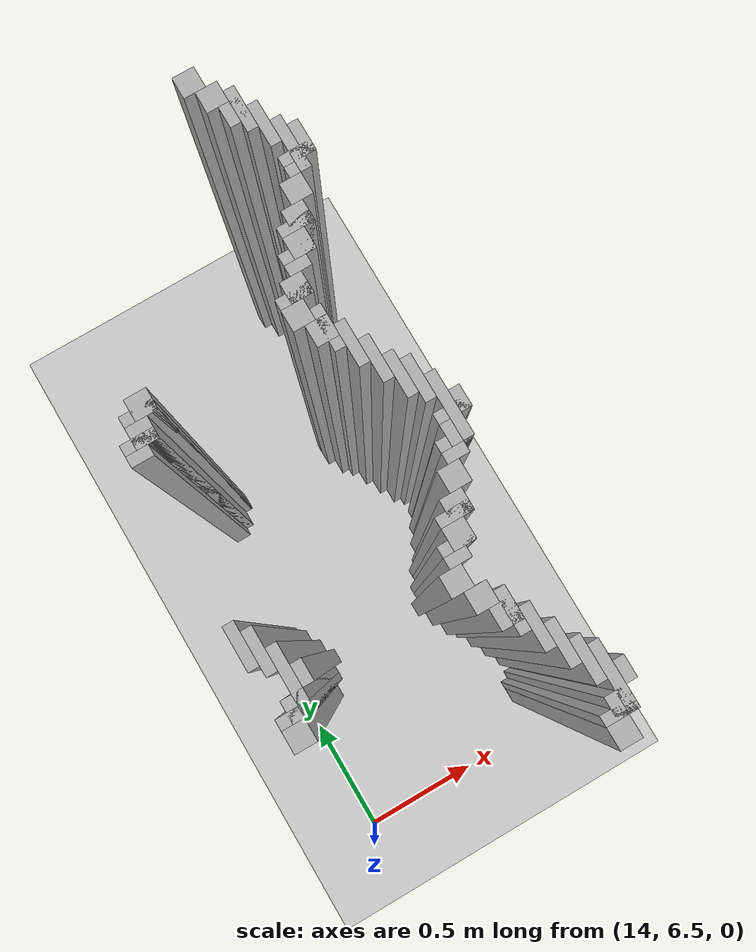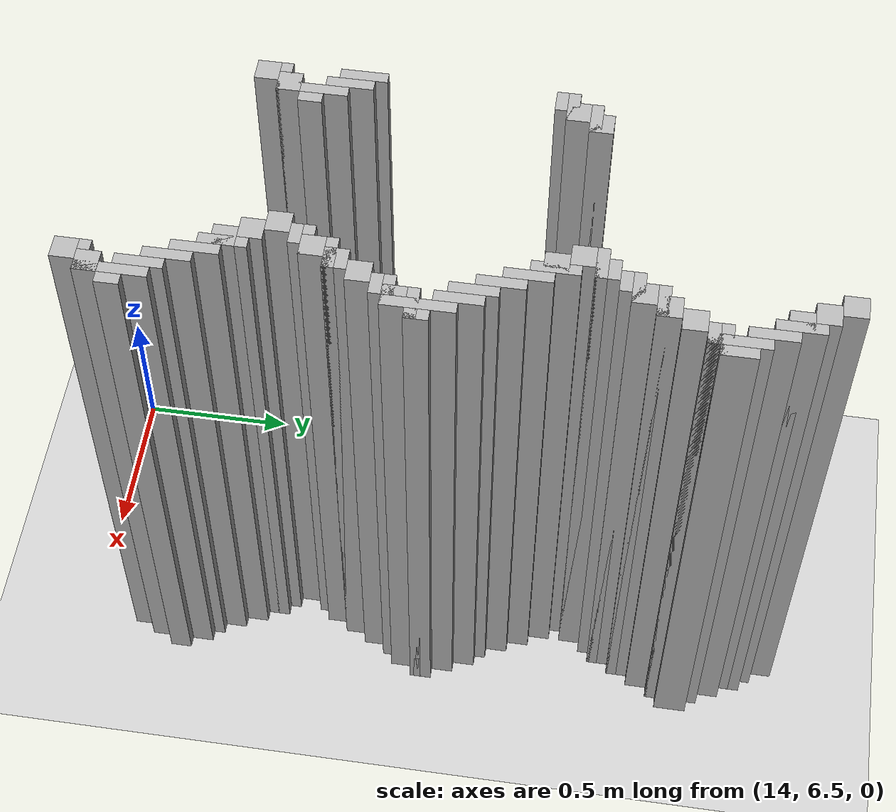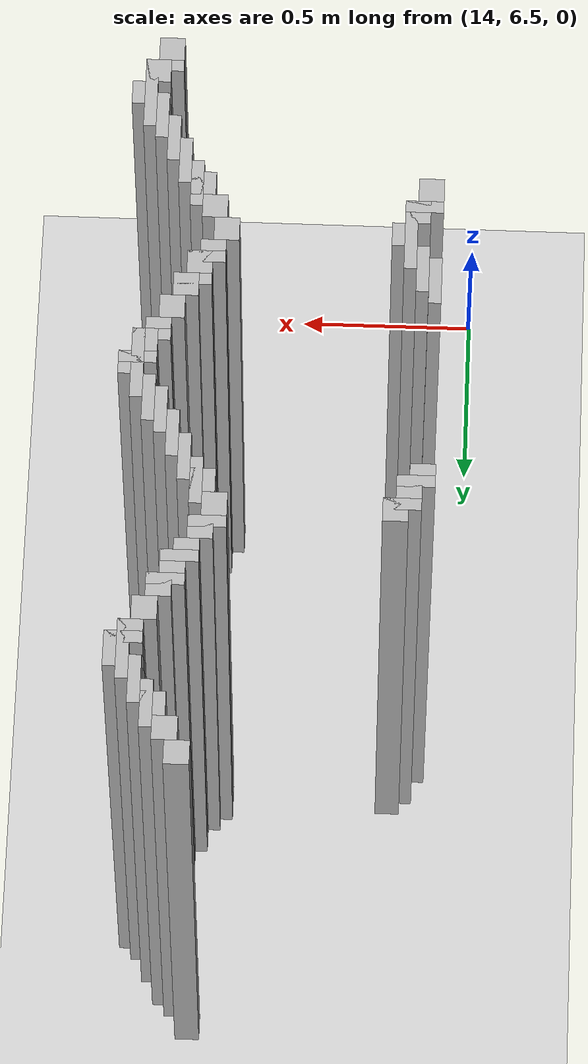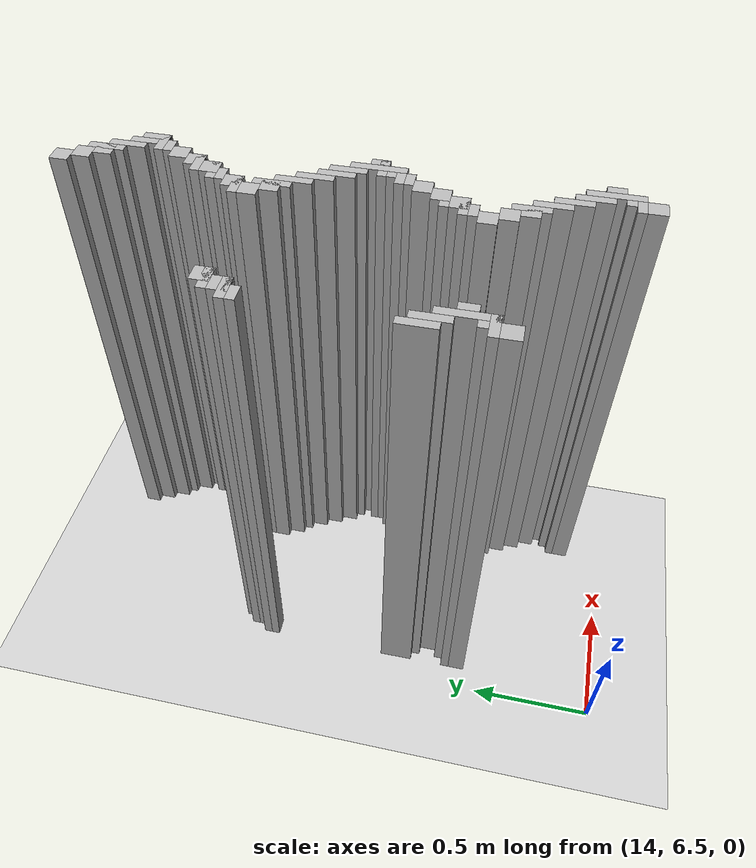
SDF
<sdf version="1.6">
 <world name="slam_world">
  <model name="ground_plane">
   <static>true</static>
   <link name="link">
    <collision name="collision">
     <geometry><plane><normal>0 0 1</normal><size>100 100</size></plane></geometry>
    </collision>
    <visual name="visual">
     <geometry><plane><normal>0 0 1</normal><size>100 100</size></plane></geometry>
     <material>
      <ambient>0.8 0.8 0.8 1</ambient>
      <diffuse>0.8 0.8 0.8 1</diffuse>
      <specular>0.8 0.8 0.8 1</specular>
     </material>
    </visual>
   </link>
  </model>
  <model name="wall_2879">
   <static>true</static>
   <pose>14.756380510440835 8.805104408352667 1.0 0 0 0</pose>
   <link name="link">
    <collision name="collision">
     <geometry><box><size>0.06960556844547564 0.06960556844547564 2.0</size></box></geometry>
    </collision>
    <visual name="visual">
     <geometry><box><size>0.06960556844547564 0.06960556844547564 2.0</size></box></geometry>
     <material><ambient>0.5 0.5 0.5 1</ambient><diffuse>0.7 0.7 0.7 1</diffuse></material>
    </visual>
   </link>
  </model>
  <model name="wall_2892">
   <static>true</static>
   <pose>14.791183294663572 8.735498839907192 1.0 0 0 0</pose>
   <link name="link">
    <collision name="collision">
     <geometry><box><size>0.06960556844547564 0.06960556844547564 2.0</size></box></geometry>
    </collision>
    <visual name="visual">
     <geometry><box><size>0.06960556844547564 0.06960556844547564 2.0</size></box></geometry>
     <material><ambient>0.5 0.5 0.5 1</ambient><diffuse>0.7 0.7 0.7 1</diffuse></material>
    </visual>
   </link>
  </model>
  <model name="wall_2905">
   <static>true</static>
   <pose>14.84338747099768 8.665893271461716 1.0 0 0 0</pose>
   <link name="link">
    <collision name="collision">
     <geometry><box><size>0.03480278422273782 0.13921113689095127 2.0</size></box></geometry>
    </collision>
    <visual name="visual">
     <geometry><box><size>0.03480278422273782 0.13921113689095127 2.0</size></box></geometry>
     <material><ambient>0.5 0.5 0.5 1</ambient><diffuse>0.7 0.7 0.7 1</diffuse></material>
    </visual>
   </link>
  </model>
  <model name="wall_2914">
   <static>true</static>
   <pose>14.825986078886311 8.665893271461716 1.0 0 0 0</pose>
   <link name="link">
    <collision name="collision">
     <geometry><box><size>0.06960556844547564 0.06960556844547564 2.0</size></box></geometry>
    </collision>
    <visual name="visual">
     <geometry><box><size>0.06960556844547564 0.06960556844547564 2.0</size></box></geometry>
     <material><ambient>0.5 0.5 0.5 1</ambient><diffuse>0.7 0.7 0.7 1</diffuse></material>
    </visual>
   </link>
  </model>
  <model name="wall_2927">
   <static>true</static>
   <pose>14.878190255220417 8.596287703016241 1.0 0 0 0</pose>
   <link name="link">
    <collision name="collision">
     <geometry><box><size>0.03480278422273782 0.13921113689095127 2.0</size></box></geometry>
    </collision>
    <visual name="visual">
     <geometry><box><size>0.03480278422273782 0.13921113689095127 2.0</size></box></geometry>
     <material><ambient>0.5 0.5 0.5 1</ambient><diffuse>0.7 0.7 0.7 1</diffuse></material>
    </visual>
   </link>
  </model>
  <model name="wall_2946">
   <static>true</static>
   <pose>14.912993039443155 8.509280742459396 1.0 0 0 0</pose>
   <link name="link">
    <collision name="collision">
     <geometry><box><size>0.03480278422273782 0.17401392111368907 2.0</size></box></geometry>
    </collision>
    <visual name="visual">
     <geometry><box><size>0.03480278422273782 0.17401392111368907 2.0</size></box></geometry>
     <material><ambient>0.5 0.5 0.5 1</ambient><diffuse>0.7 0.7 0.7 1</diffuse></material>
    </visual>
   </link>
  </model>
  <model name="wall_2959">
   <static>true</static>
   <pose>14.947795823665892 8.509280742459396 1.0 0 0 0</pose>
   <link name="link">
    <collision name="collision">
     <geometry><box><size>0.03480278422273782 0.10440835266821345 2.0</size></box></geometry>
    </collision>
    <visual name="visual">
     <geometry><box><size>0.03480278422273782 0.10440835266821345 2.0</size></box></geometry>
     <material><ambient>0.5 0.5 0.5 1</ambient><diffuse>0.7 0.7 0.7 1</diffuse></material>
    </visual>
   </link>
  </model>
  <model name="wall_2985">
   <static>true</static>
   <pose>14.912993039443155 8.474477958236658 1.0 0 0 0</pose>
   <link name="link">
    <collision name="collision">
     <geometry><box><size>0.10440835266821345 0.03480278422273782 2.0</size></box></geometry>
    </collision>
    <visual name="visual">
     <geometry><box><size>0.10440835266821345 0.03480278422273782 2.0</size></box></geometry>
     <material><ambient>0.5 0.5 0.5 1</ambient><diffuse>0.7 0.7 0.7 1</diffuse></material>
    </visual>
   </link>
  </model>
  <model name="wall_3000">
   <static>true</static>
   <pose>14.895591647331786 8.43967517401392 1.0 0 0 0</pose>
   <link name="link">
    <collision name="collision">
     <geometry><box><size>0.06960556844547564 0.03480278422273782 2.0</size></box></geometry>
    </collision>
    <visual name="visual">
     <geometry><box><size>0.06960556844547564 0.03480278422273782 2.0</size></box></geometry>
     <material><ambient>0.5 0.5 0.5 1</ambient><diffuse>0.7 0.7 0.7 1</diffuse></material>
    </visual>
   </link>
  </model>
  <model name="wall_3015">
   <static>true</static>
   <pose>14.860788863109049 8.387470997679815 1.0 0 0 0</pose>
   <link name="link">
    <collision name="collision">
     <geometry><box><size>0.06960556844547564 0.06960556844547564 2.0</size></box></geometry>
    </collision>
    <visual name="visual">
     <geometry><box><size>0.06960556844547564 0.06960556844547564 2.0</size></box></geometry>
     <material><ambient>0.5 0.5 0.5 1</ambient><diffuse>0.7 0.7 0.7 1</diffuse></material>
    </visual>
   </link>
  </model>
  <model name="wall_3030">
   <static>true</static>
   <pose>14.825986078886311 8.317865429234338 1.0 0 0 0</pose>
   <link name="link">
    <collision name="collision">
     <geometry><box><size>0.06960556844547564 0.06960556844547564 2.0</size></box></geometry>
    </collision>
    <visual name="visual">
     <geometry><box><size>0.06960556844547564 0.06960556844547564 2.0</size></box></geometry>
     <material><ambient>0.5 0.5 0.5 1</ambient><diffuse>0.7 0.7 0.7 1</diffuse></material>
    </visual>
   </link>
  </model>
  <model name="wall_3045">
   <static>true</static>
   <pose>14.80858468677494 8.30046403712297 1.0 0 0 0</pose>
   <link name="link">
    <collision name="collision">
     <geometry><box><size>0.10440835266821345 0.03480278422273782 2.0</size></box></geometry>
    </collision>
    <visual name="visual">
     <geometry><box><size>0.10440835266821345 0.03480278422273782 2.0</size></box></geometry>
     <material><ambient>0.5 0.5 0.5 1</ambient><diffuse>0.7 0.7 0.7 1</diffuse></material>
    </visual>
   </link>
  </model>
  <model name="wall_3055">
   <static>true</static>
   <pose>14.791183294663572 8.248259860788863 1.0 0 0 0</pose>
   <link name="link">
    <collision name="collision">
     <geometry><box><size>0.06960556844547564 0.06960556844547564 2.0</size></box></geometry>
    </collision>
    <visual name="visual">
     <geometry><box><size>0.06960556844547564 0.06960556844547564 2.0</size></box></geometry>
     <material><ambient>0.5 0.5 0.5 1</ambient><diffuse>0.7 0.7 0.7 1</diffuse></material>
    </visual>
   </link>
  </model>
  <model name="wall_3070">
   <static>true</static>
   <pose>14.773781902552203 8.230858468677495 1.0 0 0 0</pose>
   <link name="link">
    <collision name="collision">
     <geometry><box><size>0.10440835266821345 0.03480278422273782 2.0</size></box></geometry>
    </collision>
    <visual name="visual">
     <geometry><box><size>0.10440835266821345 0.03480278422273782 2.0</size></box></geometry>
     <material><ambient>0.5 0.5 0.5 1</ambient><diffuse>0.7 0.7 0.7 1</diffuse></material>
    </visual>
   </link>
  </model>
  <model name="wall_3079">
   <static>true</static>
   <pose>14.756380510440835 8.196055684454755 1.0 0 0 0</pose>
   <link name="link">
    <collision name="collision">
     <geometry><box><size>0.06960556844547564 0.03480278422273782 2.0</size></box></geometry>
    </collision>
    <visual name="visual">
     <geometry><box><size>0.06960556844547564 0.03480278422273782 2.0</size></box></geometry>
     <material><ambient>0.5 0.5 0.5 1</ambient><diffuse>0.7 0.7 0.7 1</diffuse></material>
    </visual>
   </link>
  </model>
  <model name="wall_3094">
   <static>true</static>
   <pose>14.721577726218097 8.14385150812065 1.0 0 0 0</pose>
   <link name="link">
    <collision name="collision">
     <geometry><box><size>0.06960556844547564 0.06960556844547564 2.0</size></box></geometry>
    </collision>
    <visual name="visual">
     <geometry><box><size>0.06960556844547564 0.06960556844547564 2.0</size></box></geometry>
     <material><ambient>0.5 0.5 0.5 1</ambient><diffuse>0.7 0.7 0.7 1</diffuse></material>
    </visual>
   </link>
  </model>
  <model name="wall_3108">
   <static>true</static>
   <pose>14.704176334106728 8.12645011600928 1.0 0 0 0</pose>
   <link name="link">
    <collision name="collision">
     <geometry><box><size>0.10440835266821345 0.03480278422273782 2.0</size></box></geometry>
    </collision>
    <visual name="visual">
     <geometry><box><size>0.10440835266821345 0.03480278422273782 2.0</size></box></geometry>
     <material><ambient>0.5 0.5 0.5 1</ambient><diffuse>0.7 0.7 0.7 1</diffuse></material>
    </visual>
   </link>
  </model>
  <model name="wall_3119">
   <static>true</static>
   <pose>14.199535962877029 8.074245939675174 1.0 0 0 0</pose>
   <link name="link">
    <collision name="collision">
     <geometry><box><size>0.06960556844547564 0.06960556844547564 2.0</size></box></geometry>
    </collision>
    <visual name="visual">
     <geometry><box><size>0.06960556844547564 0.06960556844547564 2.0</size></box></geometry>
     <material><ambient>0.5 0.5 0.5 1</ambient><diffuse>0.7 0.7 0.7 1</diffuse></material>
    </visual>
   </link>
  </model>
  <model name="wall_3120">
   <static>true</static>
   <pose>14.68677494199536 8.074245939675174 1.0 0 0 0</pose>
   <link name="link">
    <collision name="collision">
     <geometry><box><size>0.06960556844547564 0.06960556844547564 2.0</size></box></geometry>
    </collision>
    <visual name="visual">
     <geometry><box><size>0.06960556844547564 0.06960556844547564 2.0</size></box></geometry>
     <material><ambient>0.5 0.5 0.5 1</ambient><diffuse>0.7 0.7 0.7 1</diffuse></material>
    </visual>
   </link>
  </model>
  <model name="wall_3133">
   <static>true</static>
   <pose>14.18213457076566 8.056844547563804 1.0 0 0 0</pose>
   <link name="link">
    <collision name="collision">
     <geometry><box><size>0.10440835266821345 0.03480278422273782 2.0</size></box></geometry>
    </collision>
    <visual name="visual">
     <geometry><box><size>0.10440835266821345 0.03480278422273782 2.0</size></box></geometry>
     <material><ambient>0.5 0.5 0.5 1</ambient><diffuse>0.7 0.7 0.7 1</diffuse></material>
    </visual>
   </link>
  </model>
  <model name="wall_3134">
   <static>true</static>
   <pose>14.738979118329466 8.004640371229698 1.0 0 0 0</pose>
   <link name="link">
    <collision name="collision">
     <geometry><box><size>0.03480278422273782 0.13921113689095127 2.0</size></box></geometry>
    </collision>
    <visual name="visual">
     <geometry><box><size>0.03480278422273782 0.13921113689095127 2.0</size></box></geometry>
     <material><ambient>0.5 0.5 0.5 1</ambient><diffuse>0.7 0.7 0.7 1</diffuse></material>
    </visual>
   </link>
  </model>
  <model name="wall_3149">
   <static>true</static>
   <pose>14.164733178654291 8.004640371229698 1.0 0 0 0</pose>
   <link name="link">
    <collision name="collision">
     <geometry><box><size>0.06960556844547564 0.06960556844547564 2.0</size></box></geometry>
    </collision>
    <visual name="visual">
     <geometry><box><size>0.06960556844547564 0.06960556844547564 2.0</size></box></geometry>
     <material><ambient>0.5 0.5 0.5 1</ambient><diffuse>0.7 0.7 0.7 1</diffuse></material>
    </visual>
   </link>
  </model>
  <model name="wall_3150">
   <static>true</static>
   <pose>14.721577726218097 8.004640371229698 1.0 0 0 0</pose>
   <link name="link">
    <collision name="collision">
     <geometry><box><size>0.06960556844547564 0.06960556844547564 2.0</size></box></geometry>
    </collision>
    <visual name="visual">
     <geometry><box><size>0.06960556844547564 0.06960556844547564 2.0</size></box></geometry>
     <material><ambient>0.5 0.5 0.5 1</ambient><diffuse>0.7 0.7 0.7 1</diffuse></material>
    </visual>
   </link>
  </model>
  <model name="wall_3165">
   <static>true</static>
   <pose>14.147331786542923 7.987238979118329 1.0 0 0 0</pose>
   <link name="link">
    <collision name="collision">
     <geometry><box><size>0.10440835266821345 0.03480278422273782 2.0</size></box></geometry>
    </collision>
    <visual name="visual">
     <geometry><box><size>0.10440835266821345 0.03480278422273782 2.0</size></box></geometry>
     <material><ambient>0.5 0.5 0.5 1</ambient><diffuse>0.7 0.7 0.7 1</diffuse></material>
    </visual>
   </link>
  </model>
  <model name="wall_3166">
   <static>true</static>
   <pose>14.773781902552203 7.935034802784222 1.0 0 0 0</pose>
   <link name="link">
    <collision name="collision">
     <geometry><box><size>0.03480278422273782 0.13921113689095127 2.0</size></box></geometry>
    </collision>
    <visual name="visual">
     <geometry><box><size>0.03480278422273782 0.13921113689095127 2.0</size></box></geometry>
     <material><ambient>0.5 0.5 0.5 1</ambient><diffuse>0.7 0.7 0.7 1</diffuse></material>
    </visual>
   </link>
  </model>
  <model name="wall_3177">
   <static>true</static>
   <pose>14.129930394431554 7.952436194895592 1.0 0 0 0</pose>
   <link name="link">
    <collision name="collision">
     <geometry><box><size>0.06960556844547564 0.03480278422273782 2.0</size></box></geometry>
    </collision>
    <visual name="visual">
     <geometry><box><size>0.06960556844547564 0.03480278422273782 2.0</size></box></geometry>
     <material><ambient>0.5 0.5 0.5 1</ambient><diffuse>0.7 0.7 0.7 1</diffuse></material>
    </visual>
   </link>
  </model>
  <model name="wall_3193">
   <static>true</static>
   <pose>14.80858468677494 7.865429234338746 1.0 0 0 0</pose>
   <link name="link">
    <collision name="collision">
     <geometry><box><size>0.03480278422273782 0.13921113689095127 2.0</size></box></geometry>
    </collision>
    <visual name="visual">
     <geometry><box><size>0.03480278422273782 0.13921113689095127 2.0</size></box></geometry>
     <material><ambient>0.5 0.5 0.5 1</ambient><diffuse>0.7 0.7 0.7 1</diffuse></material>
    </visual>
   </link>
  </model>
  <model name="wall_3209">
   <static>true</static>
   <pose>14.84338747099768 7.795823665893272 1.0 0 0 0</pose>
   <link name="link">
    <collision name="collision">
     <geometry><box><size>0.03480278422273782 0.13921113689095127 2.0</size></box></geometry>
    </collision>
    <visual name="visual">
     <geometry><box><size>0.03480278422273782 0.13921113689095127 2.0</size></box></geometry>
     <material><ambient>0.5 0.5 0.5 1</ambient><diffuse>0.7 0.7 0.7 1</diffuse></material>
    </visual>
   </link>
  </model>
  <model name="wall_3225">
   <static>true</static>
   <pose>14.878190255220417 7.761020881670533 1.0 0 0 0</pose>
   <link name="link">
    <collision name="collision">
     <geometry><box><size>0.03480278422273782 0.13921113689095127 2.0</size></box></geometry>
    </collision>
    <visual name="visual">
     <geometry><box><size>0.03480278422273782 0.13921113689095127 2.0</size></box></geometry>
     <material><ambient>0.5 0.5 0.5 1</ambient><diffuse>0.7 0.7 0.7 1</diffuse></material>
    </visual>
   </link>
  </model>
  <model name="wall_3250">
   <static>true</static>
   <pose>14.912993039443155 7.65661252900232 1.0 0 0 0</pose>
   <link name="link">
    <collision name="collision">
     <geometry><box><size>0.03480278422273782 0.2088167053364269 2.0</size></box></geometry>
    </collision>
    <visual name="visual">
     <geometry><box><size>0.03480278422273782 0.2088167053364269 2.0</size></box></geometry>
     <material><ambient>0.5 0.5 0.5 1</ambient><diffuse>0.7 0.7 0.7 1</diffuse></material>
    </visual>
   </link>
  </model>
  <model name="wall_3275">
   <static>true</static>
   <pose>14.947795823665892 7.65661252900232 1.0 0 0 0</pose>
   <link name="link">
    <collision name="collision">
     <geometry><box><size>0.03480278422273782 0.06960556844547564 2.0</size></box></geometry>
    </collision>
    <visual name="visual">
     <geometry><box><size>0.03480278422273782 0.06960556844547564 2.0</size></box></geometry>
     <material><ambient>0.5 0.5 0.5 1</ambient><diffuse>0.7 0.7 0.7 1</diffuse></material>
    </visual>
   </link>
  </model>
  <model name="wall_3289">
   <static>true</static>
   <pose>14.912993039443155 7.6392111368909505 1.0 0 0 0</pose>
   <link name="link">
    <collision name="collision">
     <geometry><box><size>0.10440835266821345 0.03480278422273782 2.0</size></box></geometry>
    </collision>
    <visual name="visual">
     <geometry><box><size>0.10440835266821345 0.03480278422273782 2.0</size></box></geometry>
     <material><ambient>0.5 0.5 0.5 1</ambient><diffuse>0.7 0.7 0.7 1</diffuse></material>
    </visual>
   </link>
  </model>
  <model name="wall_3305">
   <static>true</static>
   <pose>14.895591647331786 7.587006960556844 1.0 0 0 0</pose>
   <link name="link">
    <collision name="collision">
     <geometry><box><size>0.06960556844547564 0.06960556844547564 2.0</size></box></geometry>
    </collision>
    <visual name="visual">
     <geometry><box><size>0.06960556844547564 0.06960556844547564 2.0</size></box></geometry>
     <material><ambient>0.5 0.5 0.5 1</ambient><diffuse>0.7 0.7 0.7 1</diffuse></material>
    </visual>
   </link>
  </model>
  <model name="wall_3321">
   <static>true</static>
   <pose>14.878190255220417 7.569605568445476 1.0 0 0 0</pose>
   <link name="link">
    <collision name="collision">
     <geometry><box><size>0.10440835266821345 0.03480278422273782 2.0</size></box></geometry>
    </collision>
    <visual name="visual">
     <geometry><box><size>0.10440835266821345 0.03480278422273782 2.0</size></box></geometry>
     <material><ambient>0.5 0.5 0.5 1</ambient><diffuse>0.7 0.7 0.7 1</diffuse></material>
    </visual>
   </link>
  </model>
  <model name="wall_3332">
   <static>true</static>
   <pose>14.860788863109049 7.534802784222737 1.0 0 0 0</pose>
   <link name="link">
    <collision name="collision">
     <geometry><box><size>0.06960556844547564 0.03480278422273782 2.0</size></box></geometry>
    </collision>
    <visual name="visual">
     <geometry><box><size>0.06960556844547564 0.03480278422273782 2.0</size></box></geometry>
     <material><ambient>0.5 0.5 0.5 1</ambient><diffuse>0.7 0.7 0.7 1</diffuse></material>
    </visual>
   </link>
  </model>
  <model name="wall_3348">
   <static>true</static>
   <pose>14.825986078886311 7.48259860788863 1.0 0 0 0</pose>
   <link name="link">
    <collision name="collision">
     <geometry><box><size>0.06960556844547564 0.06960556844547564 2.0</size></box></geometry>
    </collision>
    <visual name="visual">
     <geometry><box><size>0.06960556844547564 0.06960556844547564 2.0</size></box></geometry>
     <material><ambient>0.5 0.5 0.5 1</ambient><diffuse>0.7 0.7 0.7 1</diffuse></material>
    </visual>
   </link>
  </model>
  <model name="wall_3363">
   <static>true</static>
   <pose>14.112529002320185 7.378190255220417 1.0 0 0 0</pose>
   <link name="link">
    <collision name="collision">
     <geometry><box><size>0.03480278422273782 0.13921113689095127 2.0</size></box></geometry>
    </collision>
    <visual name="visual">
     <geometry><box><size>0.03480278422273782 0.13921113689095127 2.0</size></box></geometry>
     <material><ambient>0.5 0.5 0.5 1</ambient><diffuse>0.7 0.7 0.7 1</diffuse></material>
    </visual>
   </link>
  </model>
  <model name="wall_3364">
   <static>true</static>
   <pose>14.791183294663572 7.412993039443156 1.0 0 0 0</pose>
   <link name="link">
    <collision name="collision">
     <geometry><box><size>0.06960556844547564 0.06960556844547564 2.0</size></box></geometry>
    </collision>
    <visual name="visual">
     <geometry><box><size>0.06960556844547564 0.06960556844547564 2.0</size></box></geometry>
     <material><ambient>0.5 0.5 0.5 1</ambient><diffuse>0.7 0.7 0.7 1</diffuse></material>
    </visual>
   </link>
  </model>
  <model name="wall_3379">
   <static>true</static>
   <pose>14.147331786542923 7.34338747099768 1.0 0 0 0</pose>
   <link name="link">
    <collision name="collision">
     <geometry><box><size>0.03480278422273782 0.13921113689095127 2.0</size></box></geometry>
    </collision>
    <visual name="visual">
     <geometry><box><size>0.03480278422273782 0.13921113689095127 2.0</size></box></geometry>
     <material><ambient>0.5 0.5 0.5 1</ambient><diffuse>0.7 0.7 0.7 1</diffuse></material>
    </visual>
   </link>
  </model>
  <model name="wall_3380">
   <static>true</static>
   <pose>14.773781902552203 7.395591647331786 1.0 0 0 0</pose>
   <link name="link">
    <collision name="collision">
     <geometry><box><size>0.10440835266821345 0.03480278422273782 2.0</size></box></geometry>
    </collision>
    <visual name="visual">
     <geometry><box><size>0.10440835266821345 0.03480278422273782 2.0</size></box></geometry>
     <material><ambient>0.5 0.5 0.5 1</ambient><diffuse>0.7 0.7 0.7 1</diffuse></material>
    </visual>
   </link>
  </model>
  <model name="wall_3389">
   <static>true</static>
   <pose>14.756380510440835 7.34338747099768 1.0 0 0 0</pose>
   <link name="link">
    <collision name="collision">
     <geometry><box><size>0.06960556844547564 0.06960556844547564 2.0</size></box></geometry>
    </collision>
    <visual name="visual">
     <geometry><box><size>0.06960556844547564 0.06960556844547564 2.0</size></box></geometry>
     <material><ambient>0.5 0.5 0.5 1</ambient><diffuse>0.7 0.7 0.7 1</diffuse></material>
    </visual>
   </link>
  </model>
  <model name="wall_3404">
   <static>true</static>
   <pose>14.18213457076566 7.238979118329466 1.0 0 0 0</pose>
   <link name="link">
    <collision name="collision">
     <geometry><box><size>0.03480278422273782 0.2088167053364269 2.0</size></box></geometry>
    </collision>
    <visual name="visual">
     <geometry><box><size>0.03480278422273782 0.2088167053364269 2.0</size></box></geometry>
     <material><ambient>0.5 0.5 0.5 1</ambient><diffuse>0.7 0.7 0.7 1</diffuse></material>
    </visual>
   </link>
  </model>
  <model name="wall_3405">
   <static>true</static>
   <pose>14.738979118329466 7.32598607888631 1.0 0 0 0</pose>
   <link name="link">
    <collision name="collision">
     <geometry><box><size>0.10440835266821345 0.03480278422273782 2.0</size></box></geometry>
    </collision>
    <visual name="visual">
     <geometry><box><size>0.10440835266821345 0.03480278422273782 2.0</size></box></geometry>
     <material><ambient>0.5 0.5 0.5 1</ambient><diffuse>0.7 0.7 0.7 1</diffuse></material>
    </visual>
   </link>
  </model>
  <model name="wall_3414">
   <static>true</static>
   <pose>14.721577726218097 7.291183294663573 1.0 0 0 0</pose>
   <link name="link">
    <collision name="collision">
     <geometry><box><size>0.06960556844547564 0.03480278422273782 2.0</size></box></geometry>
    </collision>
    <visual name="visual">
     <geometry><box><size>0.06960556844547564 0.03480278422273782 2.0</size></box></geometry>
     <material><ambient>0.5 0.5 0.5 1</ambient><diffuse>0.7 0.7 0.7 1</diffuse></material>
    </visual>
   </link>
  </model>
  <model name="wall_3425">
   <static>true</static>
   <pose>14.2169373549884 7.238979118329466 1.0 0 0 0</pose>
   <link name="link">
    <collision name="collision">
     <geometry><box><size>0.03480278422273782 0.06960556844547564 2.0</size></box></geometry>
    </collision>
    <visual name="visual">
     <geometry><box><size>0.03480278422273782 0.06960556844547564 2.0</size></box></geometry>
     <material><ambient>0.5 0.5 0.5 1</ambient><diffuse>0.7 0.7 0.7 1</diffuse></material>
    </visual>
   </link>
  </model>
  <model name="wall_3426">
   <static>true</static>
   <pose>14.68677494199536 7.238979118329466 1.0 0 0 0</pose>
   <link name="link">
    <collision name="collision">
     <geometry><box><size>0.06960556844547564 0.06960556844547564 2.0</size></box></geometry>
    </collision>
    <visual name="visual">
     <geometry><box><size>0.06960556844547564 0.06960556844547564 2.0</size></box></geometry>
     <material><ambient>0.5 0.5 0.5 1</ambient><diffuse>0.7 0.7 0.7 1</diffuse></material>
    </visual>
   </link>
  </model>
  <model name="wall_3437">
   <static>true</static>
   <pose>14.164733178654291 7.16937354988399 1.0 0 0 0</pose>
   <link name="link">
    <collision name="collision">
     <geometry><box><size>0.06960556844547564 0.06960556844547564 2.0</size></box></geometry>
    </collision>
    <visual name="visual">
     <geometry><box><size>0.06960556844547564 0.06960556844547564 2.0</size></box></geometry>
     <material><ambient>0.5 0.5 0.5 1</ambient><diffuse>0.7 0.7 0.7 1</diffuse></material>
    </visual>
   </link>
  </model>
  <model name="wall_3438">
   <static>true</static>
   <pose>14.721577726218097 7.16937354988399 1.0 0 0 0</pose>
   <link name="link">
    <collision name="collision">
     <geometry><box><size>0.06960556844547564 0.06960556844547564 2.0</size></box></geometry>
    </collision>
    <visual name="visual">
     <geometry><box><size>0.06960556844547564 0.06960556844547564 2.0</size></box></geometry>
     <material><ambient>0.5 0.5 0.5 1</ambient><diffuse>0.7 0.7 0.7 1</diffuse></material>
    </visual>
   </link>
  </model>
  <model name="wall_3449">
   <static>true</static>
   <pose>14.147331786542923 7.151972157772621 1.0 0 0 0</pose>
   <link name="link">
    <collision name="collision">
     <geometry><box><size>0.10440835266821345 0.03480278422273782 2.0</size></box></geometry>
    </collision>
    <visual name="visual">
     <geometry><box><size>0.10440835266821345 0.03480278422273782 2.0</size></box></geometry>
     <material><ambient>0.5 0.5 0.5 1</ambient><diffuse>0.7 0.7 0.7 1</diffuse></material>
    </visual>
   </link>
  </model>
  <model name="wall_3450">
   <static>true</static>
   <pose>14.773781902552203 7.099767981438514 1.0 0 0 0</pose>
   <link name="link">
    <collision name="collision">
     <geometry><box><size>0.03480278422273782 0.13921113689095127 2.0</size></box></geometry>
    </collision>
    <visual name="visual">
     <geometry><box><size>0.03480278422273782 0.13921113689095127 2.0</size></box></geometry>
     <material><ambient>0.5 0.5 0.5 1</ambient><diffuse>0.7 0.7 0.7 1</diffuse></material>
    </visual>
   </link>
  </model>
  <model name="wall_3461">
   <static>true</static>
   <pose>14.129930394431554 7.099767981438514 1.0 0 0 0</pose>
   <link name="link">
    <collision name="collision">
     <geometry><box><size>0.06960556844547564 0.06960556844547564 2.0</size></box></geometry>
    </collision>
    <visual name="visual">
     <geometry><box><size>0.06960556844547564 0.06960556844547564 2.0</size></box></geometry>
     <material><ambient>0.5 0.5 0.5 1</ambient><diffuse>0.7 0.7 0.7 1</diffuse></material>
    </visual>
   </link>
  </model>
  <model name="wall_3462">
   <static>true</static>
   <pose>14.756380510440835 7.099767981438514 1.0 0 0 0</pose>
   <link name="link">
    <collision name="collision">
     <geometry><box><size>0.06960556844547564 0.06960556844547564 2.0</size></box></geometry>
    </collision>
    <visual name="visual">
     <geometry><box><size>0.06960556844547564 0.06960556844547564 2.0</size></box></geometry>
     <material><ambient>0.5 0.5 0.5 1</ambient><diffuse>0.7 0.7 0.7 1</diffuse></material>
    </visual>
   </link>
  </model>
  <model name="wall_3474">
   <static>true</static>
   <pose>14.80858468677494 7.03016241299304 1.0 0 0 0</pose>
   <link name="link">
    <collision name="collision">
     <geometry><box><size>0.03480278422273782 0.13921113689095127 2.0</size></box></geometry>
    </collision>
    <visual name="visual">
     <geometry><box><size>0.03480278422273782 0.13921113689095127 2.0</size></box></geometry>
     <material><ambient>0.5 0.5 0.5 1</ambient><diffuse>0.7 0.7 0.7 1</diffuse></material>
    </visual>
   </link>
  </model>
  <model name="wall_3493">
   <static>true</static>
   <pose>14.84338747099768 6.960556844547564 1.0 0 0 0</pose>
   <link name="link">
    <collision name="collision">
     <geometry><box><size>0.03480278422273782 0.13921113689095127 2.0</size></box></geometry>
    </collision>
    <visual name="visual">
     <geometry><box><size>0.03480278422273782 0.13921113689095127 2.0</size></box></geometry>
     <material><ambient>0.5 0.5 0.5 1</ambient><diffuse>0.7 0.7 0.7 1</diffuse></material>
    </visual>
   </link>
  </model>
  <model name="wall_3512">
   <static>true</static>
   <pose>14.878190255220417 6.890951276102088 1.0 0 0 0</pose>
   <link name="link">
    <collision name="collision">
     <geometry><box><size>0.03480278422273782 0.13921113689095127 2.0</size></box></geometry>
    </collision>
    <visual name="visual">
     <geometry><box><size>0.03480278422273782 0.13921113689095127 2.0</size></box></geometry>
     <material><ambient>0.5 0.5 0.5 1</ambient><diffuse>0.7 0.7 0.7 1</diffuse></material>
    </visual>
   </link>
  </model>
  <model name="wall_3524">
   <static>true</static>
   <pose>14.912993039443155 6.821345707656612 1.0 0 0 0</pose>
   <link name="link">
    <collision name="collision">
     <geometry><box><size>0.03480278422273782 0.2088167053364269 2.0</size></box></geometry>
    </collision>
    <visual name="visual">
     <geometry><box><size>0.03480278422273782 0.2088167053364269 2.0</size></box></geometry>
     <material><ambient>0.5 0.5 0.5 1</ambient><diffuse>0.7 0.7 0.7 1</diffuse></material>
    </visual>
   </link>
  </model>
  <model name="wall_3545">
   <static>true</static>
   <pose>14.947795823665892 6.821345707656612 1.0 0 0 0</pose>
   <link name="link">
    <collision name="collision">
     <geometry><box><size>0.03480278422273782 0.06960556844547564 2.0</size></box></geometry>
    </collision>
    <visual name="visual">
     <geometry><box><size>0.03480278422273782 0.06960556844547564 2.0</size></box></geometry>
     <material><ambient>0.5 0.5 0.5 1</ambient><diffuse>0.7 0.7 0.7 1</diffuse></material>
    </visual>
   </link>
  </model>
  <model name="wall_3565">
   <static>true</static>
   <pose>14.895591647331786 6.751740139211137 1.0 0 0 0</pose>
   <link name="link">
    <collision name="collision">
     <geometry><box><size>0.06960556844547564 0.06960556844547564 2.0</size></box></geometry>
    </collision>
    <visual name="visual">
     <geometry><box><size>0.06960556844547564 0.06960556844547564 2.0</size></box></geometry>
     <material><ambient>0.5 0.5 0.5 1</ambient><diffuse>0.7 0.7 0.7 1</diffuse></material>
    </visual>
   </link>
  </model>
  <model name="wall_3578">
   <static>true</static>
   <pose>14.878190255220417 6.734338747099768 1.0 0 0 0</pose>
   <link name="link">
    <collision name="collision">
     <geometry><box><size>0.10440835266821345 0.03480278422273782 2.0</size></box></geometry>
    </collision>
    <visual name="visual">
     <geometry><box><size>0.10440835266821345 0.03480278422273782 2.0</size></box></geometry>
     <material><ambient>0.5 0.5 0.5 1</ambient><diffuse>0.7 0.7 0.7 1</diffuse></material>
    </visual>
   </link>
  </model>
  <model name="wall_3591">
   <static>true</static>
   <pose>14.860788863109049 6.682134570765661 1.0 0 0 0</pose>
   <link name="link">
    <collision name="collision">
     <geometry><box><size>0.06960556844547564 0.06960556844547564 2.0</size></box></geometry>
    </collision>
    <visual name="visual">
     <geometry><box><size>0.06960556844547564 0.06960556844547564 2.0</size></box></geometry>
     <material><ambient>0.5 0.5 0.5 1</ambient><diffuse>0.7 0.7 0.7 1</diffuse></material>
    </visual>
   </link>
  </model>
 </world>
</sdf>
